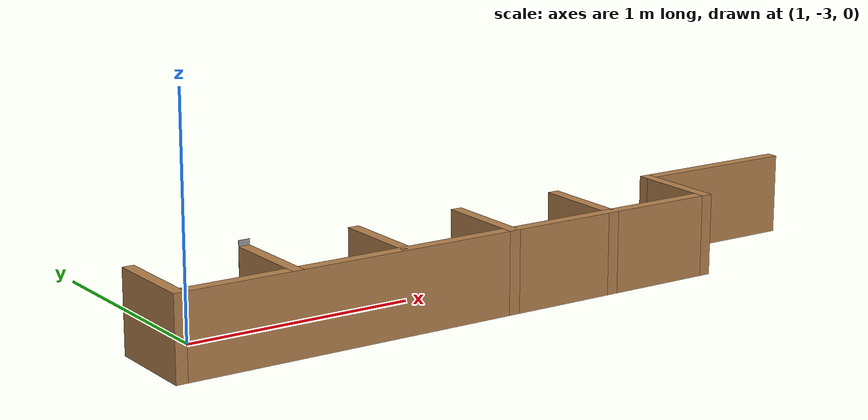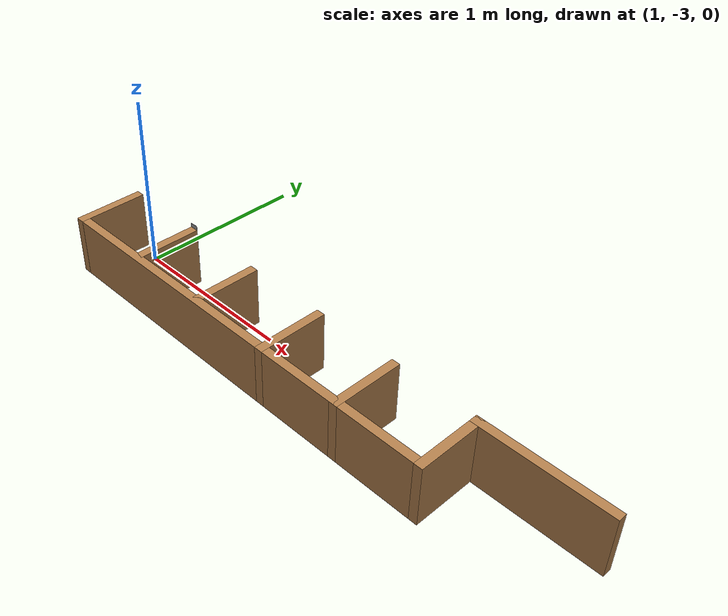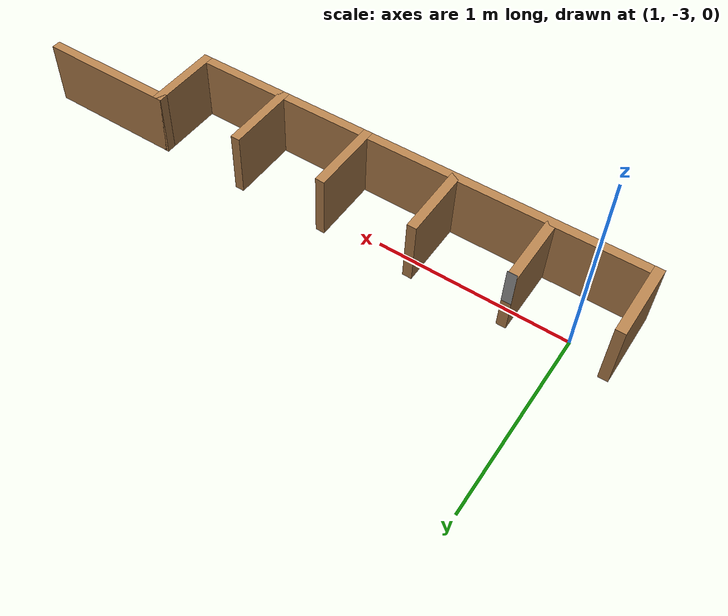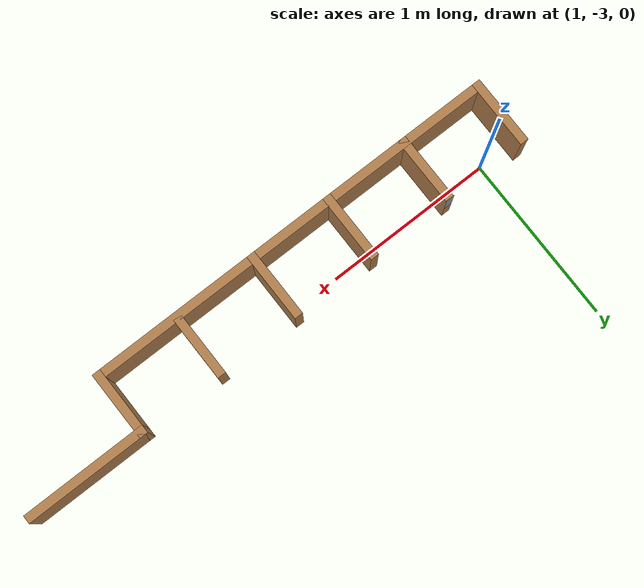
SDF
<sdf version="1.4">
 <world name="default">
  <model name="ground_plane">
   <static>true</static>
   <link name="plane_link">
    <collision name="collision">
     <geometry><plane><normal>0 0 1</normal><size>10 10</size></plane></geometry>
     <surface><friction><ode><mu>100</mu><mu2>50</mu2></ode></friction></surface>
    </collision>
   </link>
  </model>
  <model name="wall_model5">
   <pose>3.65 -2.95 0.15 0 0 0</pose>
   <link name="wall_body">
    <collision name="wall_geom">
     <geometry><box><size>0.75 0.05 0.35</size></box></geometry>
     <surface>
      <friction>
       <ode><mu>-1</mu><mu2>-1</mu2><fdir1>0.0 0.0 0.0</fdir1><slip1>0</slip1><slip2>0</slip2></ode>
      </friction>
      <bounce><restitution_coefficient>0</restitution_coefficient><threshold>100000</threshold></bounce>
      <contact>
       <ode>
        <soft_cfm>0</soft_cfm>
        <soft_erp>0.2</soft_erp>
        <kp>1000000000000</kp>
        <kd>1</kd>
        <max_vel>100</max_vel>
        <min_depth>0.001</min_depth>
       </ode>
      </contact>
     </surface>
    </collision>
    <visual name="wall_geom_visual">
     <geometry><box><size>0.75 0.05 0.35</size></box></geometry>
     <material>
      <script><uri>file://media/materials/scripts/gazebo.material</uri><name>Gazebo/Wood</name></script>
     </material>
    </visual>
   </link>
   <static>1</static>
  </model>
  <model name="wall_model13">
   <pose>3.3 -3.13 0.15 0 0 -1.5708</pose>
   <link name="wall_body">
    <collision name="wall_geom">
     <geometry><box><size>0.41 0.05 0.35</size></box></geometry>
     <surface>
      <friction>
       <ode><mu>-1</mu><mu2>-1</mu2><fdir1>0.0 0.0 0.0</fdir1><slip1>0</slip1><slip2>0</slip2></ode>
      </friction>
      <bounce><restitution_coefficient>0</restitution_coefficient><threshold>100000</threshold></bounce>
      <contact>
       <ode>
        <soft_cfm>0</soft_cfm>
        <soft_erp>0.2</soft_erp>
        <kp>1000000000000</kp>
        <kd>1</kd>
        <max_vel>100</max_vel>
        <min_depth>0.001</min_depth>
       </ode>
      </contact>
     </surface>
    </collision>
    <visual name="wall_geom_visual">
     <geometry><box><size>0.41 0.05 0.35</size></box></geometry>
     <material>
      <script><uri>file://media/materials/scripts/gazebo.material</uri><name>Gazebo/Wood</name></script>
     </material>
    </visual>
   </link>
   <static>1</static>
  </model>
  <model name="wall_model14">
   <pose>2.8 -3.13 0.15 0 0 -1.5708</pose>
   <link name="wall_body">
    <collision name="wall_geom">
     <geometry><box><size>0.41 0.05 0.35</size></box></geometry>
     <surface>
      <friction>
       <ode><mu>-1</mu><mu2>-1</mu2><fdir1>0.0 0.0 0.0</fdir1><slip1>0</slip1><slip2>0</slip2></ode>
      </friction>
      <bounce><restitution_coefficient>0</restitution_coefficient><threshold>100000</threshold></bounce>
      <contact>
       <ode>
        <soft_cfm>0</soft_cfm>
        <soft_erp>0.2</soft_erp>
        <kp>1000000000000</kp>
        <kd>1</kd>
        <max_vel>100</max_vel>
        <min_depth>0.001</min_depth>
       </ode>
      </contact>
     </surface>
    </collision>
    <visual name="wall_geom_visual">
     <geometry><box><size>0.41 0.05 0.35</size></box></geometry>
     <material>
      <script><uri>file://media/materials/scripts/gazebo.material</uri><name>Gazebo/Wood</name></script>
     </material>
    </visual>
   </link>
   <static>1</static>
  </model>
  <model name="wall_model15">
   <pose>2.3 -3.13 0.15 0 0 -1.5708</pose>
   <link name="wall_body">
    <collision name="wall_geom">
     <geometry><box><size>0.41 0.05 0.35</size></box></geometry>
     <surface>
      <friction>
       <ode><mu>-1</mu><mu2>-1</mu2><fdir1>0.0 0.0 0.0</fdir1><slip1>0</slip1><slip2>0</slip2></ode>
      </friction>
      <bounce><restitution_coefficient>0</restitution_coefficient><threshold>100000</threshold></bounce>
      <contact>
       <ode>
        <soft_cfm>0</soft_cfm>
        <soft_erp>0.2</soft_erp>
        <kp>1000000000000</kp>
        <kd>1</kd>
        <max_vel>100</max_vel>
        <min_depth>0.001</min_depth>
       </ode>
      </contact>
     </surface>
    </collision>
    <visual name="wall_geom_visual">
     <geometry><box><size>0.41 0.05 0.35</size></box></geometry>
     <material>
      <script><uri>file://media/materials/scripts/gazebo.material</uri><name>Gazebo/Wood</name></script>
     </material>
    </visual>
   </link>
   <static>1</static>
  </model>
  <model name="wall_model16">
   <pose>1.8 -3.13 0.15 0 0 -1.5708</pose>
   <link name="wall_body">
    <collision name="wall_geom">
     <geometry><box><size>0.41 0.05 0.35</size></box></geometry>
     <surface>
      <friction>
       <ode><mu>-1</mu><mu2>-1</mu2><fdir1>0.0 0.0 0.0</fdir1><slip1>0</slip1><slip2>0</slip2></ode>
      </friction>
      <bounce><restitution_coefficient>0</restitution_coefficient><threshold>100000</threshold></bounce>
      <contact>
       <ode>
        <soft_cfm>0</soft_cfm>
        <soft_erp>0.2</soft_erp>
        <kp>1000000000000</kp>
        <kd>1</kd>
        <max_vel>100</max_vel>
        <min_depth>0.001</min_depth>
       </ode>
      </contact>
     </surface>
    </collision>
    <visual name="wall_geom_visual">
     <geometry><box><size>0.41 0.05 0.35</size></box></geometry>
     <material>
      <script><uri>file://media/materials/scripts/gazebo.material</uri><name>Gazebo/Wood</name></script>
     </material>
    </visual>
   </link>
   <static>1</static>
  </model>
  <model name="wall_model17">
   <pose>1.3 -3.13 0.15 0 0 -1.5708</pose>
   <link name="wall_body">
    <collision name="wall_geom">
     <geometry><box><size>0.41 0.05 0.35</size></box></geometry>
     <surface>
      <friction>
       <ode><mu>-1</mu><mu2>-1</mu2><fdir1>0.0 0.0 0.0</fdir1><slip1>0</slip1><slip2>0</slip2></ode>
      </friction>
      <bounce><restitution_coefficient>0</restitution_coefficient><threshold>100000</threshold></bounce>
      <contact>
       <ode>
        <soft_cfm>0</soft_cfm>
        <soft_erp>0.2</soft_erp>
        <kp>1000000000000</kp>
        <kd>1</kd>
        <max_vel>100</max_vel>
        <min_depth>0.001</min_depth>
       </ode>
      </contact>
     </surface>
    </collision>
    <visual name="wall_geom_visual">
     <geometry><box><size>0.41 0.05 0.35</size></box></geometry>
     <material>
      <script><uri>file://media/materials/scripts/gazebo.material</uri><name>Gazebo/Wood</name></script>
     </material>
    </visual>
   </link>
   <static>1</static>
  </model>
  <model name="wall_model18">
   <pose>0.8 -3.13 0.15 0 0 -1.5708</pose>
   <link name="wall_body">
    <collision name="wall_geom">
     <geometry><box><size>0.41 0.05 0.35</size></box></geometry>
     <surface>
      <friction>
       <ode><mu>-1</mu><mu2>-1</mu2><fdir1>0.0 0.0 0.0</fdir1><slip1>0</slip1><slip2>0</slip2></ode>
      </friction>
      <bounce><restitution_coefficient>0</restitution_coefficient><threshold>100000</threshold></bounce>
      <contact>
       <ode>
        <soft_cfm>0</soft_cfm>
        <soft_erp>0.2</soft_erp>
        <kp>1000000000000</kp>
        <kd>1</kd>
        <max_vel>100</max_vel>
        <min_depth>0.001</min_depth>
       </ode>
      </contact>
     </surface>
    </collision>
    <visual name="wall_geom_visual">
     <geometry><box><size>0.41 0.05 0.35</size></box></geometry>
     <material>
      <script><uri>file://media/materials/scripts/gazebo.material</uri><name>Gazebo/Wood</name></script>
     </material>
    </visual>
   </link>
   <static>1</static>
  </model>
  <model name="wall_model19">
   <pose>2.05 -3.31 0.15 0 0 3.1416</pose>
   <link name="wall_body">
    <collision name="wall_geom">
     <geometry><box><size>2.45 0.05 0.35</size></box></geometry>
     <surface>
      <friction>
       <ode><mu>-1</mu><mu2>-1</mu2><fdir1>0.0 0.0 0.0</fdir1><slip1>0</slip1><slip2>0</slip2></ode>
      </friction>
      <bounce><restitution_coefficient>0</restitution_coefficient><threshold>100000</threshold></bounce>
      <contact>
       <ode>
        <soft_cfm>0</soft_cfm>
        <soft_erp>0.2</soft_erp>
        <kp>1000000000000</kp>
        <kd>1</kd>
        <max_vel>100</max_vel>
        <min_depth>0.001</min_depth>
       </ode>
      </contact>
     </surface>
    </collision>
    <visual name="wall_geom_visual">
     <geometry><box><size>2.45 0.05 0.35</size></box></geometry>
     <material>
      <script><uri>file://media/materials/scripts/gazebo.material</uri><name>Gazebo/Wood</name></script>
     </material>
    </visual>
   </link>
   <static>1</static>
  </model>
  <include>
   <uri>model://factory_gazebo/models/marker</uri>
   <name>marker13</name>
   <static>true</static>
   <pose>1.3 -2.925 0.25 0 0 1.570796</pose>
  </include>
 </world>
</sdf>
